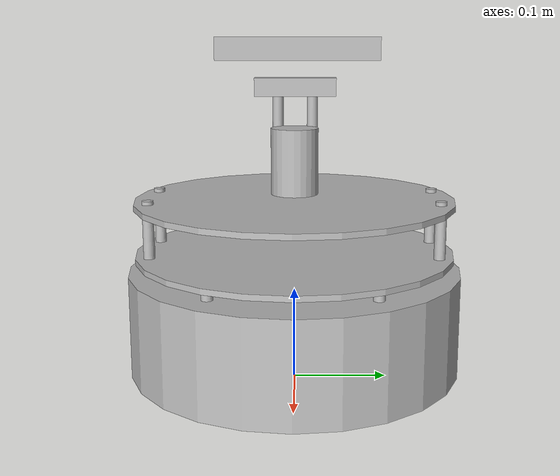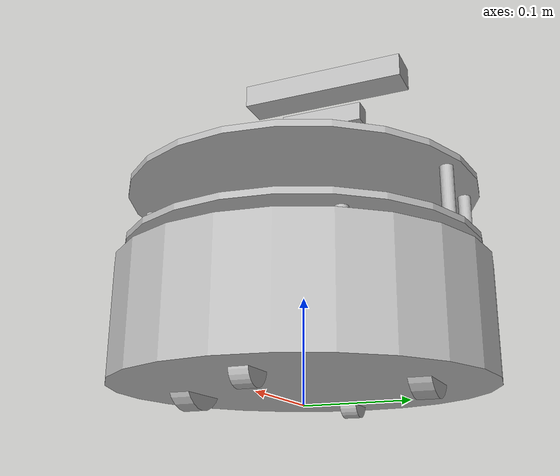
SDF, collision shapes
<sdf version='1.6'>
  <model name='turtlebot'>
    <link name='base_footprint'>
      <pose frame=''>0 0 0 0 -0 0</pose>
      <inertial>
        <pose frame=''>-0.002635 -4.1e-05 0.129243 0 -0 0</pose>
        <mass>4.6973</mass>
        <inertia>
          <ixx>0.1365</ixx>
          <ixy>-2.51802e-05</ixy>
          <ixz>0.0108194</ixz>
          <iyy>0.132157</iyy>
          <iyz>4.89572e-05</iyz>
          <izz>0.0741648</izz>
        </inertia>
      </inertial>
      <collision name='base_footprint_fixed_joint_lump__base_collision'>
        <pose frame=''>0 0 0.06969 0 -0 0</pose>
        <geometry>
          <cylinder>
            <length>0.10938</length>
            <radius>0.178</radius>
          </cylinder>
        </geometry>
      </collision>
      <collision name='base_footprint_fixed_joint_lump__caster_back_link_collision_2'>
        <pose frame=''>-0.135 0 0.0192 -1.5708 0 0</pose>
        <geometry>
          <cylinder>
            <length>0.0176</length>
            <radius>0.017</radius>
          </cylinder>
        </geometry>
        <surface>
          <contact>
            <ode>
              <kp>1e+06</kp>
              <kd>100</kd>
              <max_vel>1</max_vel>
              <min_depth>0.001</min_depth>
            </ode>
          </contact>
          <friction>
            <ode>
              <mu>0</mu>
              <mu2>0</mu2>
            </ode>
          </friction>
        </surface>
      </collision>
      <collision name='base_footprint_fixed_joint_lump__caster_front_link_collision_3'>
        <pose frame=''>0.115 0 0.0172 -1.5708 0 0</pose>
        <geometry>
          <cylinder>
            <length>0.0176</length>
            <radius>0.017</radius>
          </cylinder>
        </geometry>
        <surface>
          <contact>
            <ode>
              <kp>1e+06</kp>
              <kd>100</kd>
              <max_vel>1</max_vel>
              <min_depth>0.001</min_depth>
            </ode>
          </contact>
          <friction>
            <ode>
              <mu>0</mu>
              <mu2>0</mu2>
            </ode>
          </friction>
        </surface>
      </collision>
      <collision name='base_footprint_fixed_joint_lump__plate_bottom_link_collision_5'>
        <pose frame=''>0 0 0.1408 0 -0 0</pose>
        <geometry>
          <cylinder>
            <length>0.006</length>
            <radius>0.17</radius>
          </cylinder>
        </geometry>
      </collision>
      <collision name='base_footprint_fixed_joint_lump__plate_middle_link_collision_6'>
        <pose frame=''>0 0 0.1976 0 -0 0</pose>
        <geometry>
          <cylinder>
            <length>0.006</length>
            <radius>0.17</radius>
          </cylinder>
        </geometry>
      </collision>
      <collision name='base_footprint_fixed_joint_lump__pole_bottom_0_link_collision_8'>
        <pose frame=''>0.12 0.082 0.113 0 -0 0</pose>
        <geometry>
          <cylinder>
            <length>0.0492</length>
            <radius>0.006</radius>
          </cylinder>
        </geometry>
      </collision>
      <collision name='base_footprint_fixed_joint_lump__pole_bottom_1_link_collision_9'>
        <pose frame=''>0.055 0.12 0.113 0 -0 0</pose>
        <geometry>
          <cylinder>
            <length>0.0492</length>
            <radius>0.006</radius>
          </cylinder>
        </geometry>
      </collision>
      <collision name='base_footprint_fixed_joint_lump__pole_bottom_2_link_collision_10'>
        <pose frame=''>-0.055 0.12 0.113 0 -0 0</pose>
        <geometry>
          <cylinder>
            <length>0.0492</length>
            <radius>0.006</radius>
          </cylinder>
        </geometry>
      </collision>
      <collision name='base_footprint_fixed_joint_lump__pole_bottom_3_link_collision_11'>
        <pose frame=''>0.12 -0.082 0.113 0 -0 0</pose>
        <geometry>
          <cylinder>
            <length>0.0492</length>
            <radius>0.006</radius>
          </cylinder>
        </geometry>
      </collision>
      <collision name='base_footprint_fixed_joint_lump__pole_bottom_4_link_collision_12'>
        <pose frame=''>0.055 -0.12 0.113 0 -0 0</pose>
        <geometry>
          <cylinder>
            <length>0.0492</length>
            <radius>0.006</radius>
          </cylinder>
        </geometry>
      </collision>
      <collision name='base_footprint_fixed_joint_lump__pole_bottom_5_link_collision_13'>
        <pose frame=''>-0.055 -0.12 0.113 0 -0 0</pose>
        <geometry>
          <cylinder>
            <length>0.0492</length>
            <radius>0.006</radius>
          </cylinder>
        </geometry>
      </collision>
      <collision name='base_footprint_fixed_joint_lump__pole_middle_0_link_collision_16'>
        <pose frame=''>0.0381 0.1505 0.1742 0 -0 0</pose>
        <geometry>
          <cylinder>
            <length>0.0608</length>
            <radius>0.006</radius>
          </cylinder>
        </geometry>
      </collision>
      <collision name='base_footprint_fixed_joint_lump__pole_middle_1_link_collision_17'>
        <pose frame=''>0.0381 -0.1505 0.1742 0 -0 0</pose>
        <geometry>
          <cylinder>
            <length>0.0608</length>
            <radius>0.006</radius>
          </cylinder>
        </geometry>
      </collision>
      <collision name='base_footprint_fixed_joint_lump__pole_middle_2_link_collision_18'>
        <pose frame=''>-0.0381 0.1505 0.1742 0 -0 0</pose>
        <geometry>
          <cylinder>
            <length>0.0608</length>
            <radius>0.006</radius>
          </cylinder>
        </geometry>
      </collision>
      <collision name='base_footprint_fixed_joint_lump__pole_middle_3_link_collision_19'>
        <pose frame=''>-0.0381 -0.1505 0.1742 0 -0 0</pose>
        <geometry>
          <cylinder>
            <length>0.0608</length>
            <radius>0.006</radius>
          </cylinder>
        </geometry>
      </collision>

<!-- XTION COLLISION -->
      <collision name='base_footprint_fixed_joint_lump__pole_xtion_0_link_collision_16'>
        <pose frame=''>-0.057 0.019 0.2306 0 3.14159 0</pose>
        <geometry>
          <cylinder>
            <length>0.0608</length>
            <radius>0.006</radius>
          </cylinder>
        </geometry>
      </collision>
      <collision name='base_footprint_fixed_joint_lump__pole_xtion_1_link_collision_17'>
        <pose frame=''>-0.057 0.019 0.2806 0 3.14159 0</pose>
        <geometry>
          <cylinder>
            <length>0.0608</length>
            <radius>0.006</radius>
          </cylinder>
        </geometry>
      </collision>
      <collision name='base_footprint_fixed_joint_lump__pole_xtion_2_link_collision_18'>
        <pose frame=''>-0.057 -0.019 0.2306 0 3.14159 0</pose>
        <geometry>
          <cylinder>
            <length>0.0608</length>
            <radius>0.006</radius>
          </cylinder>
        </geometry>
      </collision>
      <collision name='base_footprint_fixed_joint_lump__pole_xtion_3_link_collision_19'>
        <pose frame=''>-0.057 -0.019 0.2806 0 3.14159 0</pose>
        <geometry>
          <cylinder>
            <length>0.0608</length>
            <radius>0.006</radius>
          </cylinder>
        </geometry>
      </collision>
      <collision name='base_footprint_fixed_joint_lump__stack_xtion_link_visual_17'>
        <pose frame=''>-0.057 0 0.315 0 0 0</pose>
        <geometry>
          <box>
            <size>0.02 0.09 0.02</size>
          </box>
        </geometry>
      </collision>
      <collision name='base_footprint_fixed_joint_lump__camera_link_collision_1'>
        <pose frame=''>-0.057 0.0025 0.3565 0 -0 0</pose>
        <geometry>
          <box>
            <size>0.035 0.18 0.025</size>
          </box>
        </geometry>
      </collision>

<!-- HOKUYO COLLISION -->
      <collision name='base_footprint_fixed_joint_lump__camera_link_collision_1'>
        <pose frame=''>0 0 0.2406 0 0 0</pose>
        <geometry>
          <cylinder>
            <radius>0.025</radius>
            <length>0.07</length>
          </cylinder>
        </geometry>
      </collision>

<!-- VISUAL -->

      <visual name='base_footprint_fixed_joint_lump__base_link_visual'>
        <pose frame=''>0.001 0 0.06219 0 -0 0</pose>
        <geometry>
          <mesh>
            <scale>1 1 1</scale>
            <uri>model://turtlebot2/meshes/kobuki/main_body.dae</uri>
          </mesh>
        </geometry>
        <material>
          <script>
            <uri>__default__</uri>
            <name>__default__</name>
          </script>
        </material>
      </visual>
      <visual name='base_footprint_fixed_joint_lump__plate_bottom_link_visual_3'>
        <pose frame=''>0.02364 0 0.1408 0 -0 0</pose>
        <geometry>
          <mesh>
            <scale>1 1 1</scale>
            <uri>model://turtlebot2/meshes/stacks/plate_bottom.dae</uri>
          </mesh>
        </geometry>
      </visual>
      <visual name='base_footprint_fixed_joint_lump__plate_middle_link_visual_4'>
        <pose frame=''>-0.01364 0 0.1976 0 -0 0</pose>
        <geometry>
          <mesh>
            <scale>1 1 1</scale>
            <uri>model://turtlebot2/meshes/stacks/plate_top.dae</uri>
          </mesh>
        </geometry>
      </visual>
      <visual name='base_footprint_fixed_joint_lump__pole_bottom_0_link_visual_6'>
        <pose frame=''>0.12 0.082 0.113 0 -0 0</pose>
        <geometry>
          <mesh>
            <scale>1 1 1</scale>
            <uri>model://turtlebot2/meshes/stacks/pole_bottom.dae</uri>
          </mesh>
        </geometry>
      </visual>
      <visual name='base_footprint_fixed_joint_lump__pole_bottom_1_link_visual_7'>
        <pose frame=''>0.055 0.12 0.113 0 -0 0</pose>
        <geometry>
          <mesh>
            <scale>1 1 1</scale>
            <uri>model://turtlebot2/meshes/stacks/pole_bottom.dae</uri>
          </mesh>
        </geometry>
      </visual>
      <visual name='base_footprint_fixed_joint_lump__pole_bottom_2_link_visual_8'>
        <pose frame=''>-0.055 0.12 0.113 0 -0 0</pose>
        <geometry>
          <mesh>
            <scale>1 1 1</scale>
            <uri>model://turtlebot2/meshes/stacks/pole_bottom.dae</uri>
          </mesh>
        </geometry>
      </visual>
      <visual name='base_footprint_fixed_joint_lump__pole_bottom_3_link_visual_9'>
        <pose frame=''>0.12 -0.082 0.113 0 -0 0</pose>
        <geometry>
          <mesh>
            <scale>1 1 1</scale>
            <uri>model://turtlebot2/meshes/stacks/pole_bottom.dae</uri>
          </mesh>
        </geometry>
      </visual>
      <visual name='base_footprint_fixed_joint_lump__pole_bottom_4_link_visual_10'>
        <pose frame=''>0.055 -0.12 0.113 0 -0 0</pose>
        <geometry>
          <mesh>
            <scale>1 1 1</scale>
            <uri>model://turtlebot2/meshes/stacks/pole_bottom.dae</uri>
          </mesh>
        </geometry>
      </visual>
      <visual name='base_footprint_fixed_joint_lump__pole_bottom_5_link_visual_11'>
        <pose frame=''>-0.055 -0.12 0.113 0 -0 0</pose>
        <geometry>
          <mesh>
            <scale>1 1 1</scale>
            <uri>model://turtlebot2/meshes/stacks/pole_bottom.dae</uri>
          </mesh>
        </geometry>
      </visual>
      <visual name='base_footprint_fixed_joint_lump__pole_middle_0_link_visual_14'>
        <pose frame=''>0.0381 0.1505 0.1742 3.14159 -0 3.14159</pose>
        <geometry>
          <mesh>
            <scale>1 1 1</scale>
            <uri>model://turtlebot2/meshes/stacks/pole_middle.dae</uri>
          </mesh>
        </geometry>
      </visual>
      <visual name='base_footprint_fixed_joint_lump__pole_middle_1_link_visual_15'>
        <pose frame=''>0.0381 -0.1505 0.1742 3.14159 -0 3.14159</pose>
        <geometry>
          <mesh>
            <scale>1 1 1</scale>
            <uri>model://turtlebot2/meshes/stacks/pole_middle.dae</uri>
          </mesh>
        </geometry>
      </visual>
      <visual name='base_footprint_fixed_joint_lump__pole_middle_2_link_visual_16'>
        <pose frame=''>-0.0381 0.1505 0.1742 3.14159 -0 3.14159</pose>
        <geometry>
          <mesh>
            <scale>1 1 1</scale>
            <uri>model://turtlebot2/meshes/stacks/pole_middle.dae</uri>
          </mesh>
        </geometry>
      </visual>
      <visual name='base_footprint_fixed_joint_lump__pole_middle_3_link_visual_17'>
        <pose frame=''>-0.0381 -0.1505 0.1742 3.14159 -0 3.14159</pose>
        <geometry>
          <mesh>
            <scale>1 1 1</scale>
            <uri>model://turtlebot2/meshes/stacks/pole_middle.dae</uri>
          </mesh>
        </geometry>
      </visual>

<!-- XTION VISUAL -->
      <visual name='base_footprint_fixed_joint_lump__pole_xtion_0_link_visual_14'>
        <pose frame=''>-0.057 0.019 0.2306 0 3.14159 0</pose>
        <geometry>
          <mesh>
            <scale>1 1 1</scale>
            <uri>model://turtlebot2/meshes/stacks/pole_middle.dae</uri>
          </mesh>
        </geometry>
      </visual>
      <visual name='base_footprint_fixed_joint_lump__pole_xtion_1_link_visual_15'>
        <pose frame=''>-0.057 0.019 0.2806 0 3.14159 0</pose>
        <geometry>
          <mesh>
            <scale>1 1 1</scale>
            <uri>model://turtlebot2/meshes/stacks/pole_middle.dae</uri>
          </mesh>
        </geometry>
      </visual>
      <visual name='base_footprint_fixed_joint_lump__pole_xtion_2_link_visual_16'>
        <pose frame=''>-0.057 -0.019 0.2306 0 3.14159 0</pose>
        <geometry>
          <mesh>
            <scale>1 1 1</scale>
            <uri>model://turtlebot2/meshes/stacks/pole_middle.dae</uri>
          </mesh>
        </geometry>
      </visual>
      <visual name='base_footprint_fixed_joint_lump__pole_xtion_3_link_visual_17'>
        <pose frame=''>-0.057 -0.019 0.2806 0 3.14159 0</pose>
        <geometry>
          <mesh>
            <scale>1 1 1</scale>
            <uri>model://turtlebot2/meshes/stacks/pole_middle.dae</uri>
          </mesh>
        </geometry>
      </visual>
      <visual name='base_footprint_fixed_joint_lump__stack_xtion_link_visual_17'>
        <pose frame=''>-0.057 0 0.315 0 0 0</pose>
        <geometry>
          <box>
            <size>0.02 0.09 0.02</size>
          </box>
        </geometry>
        <material>
          <script>
            <uri>file://media/materials/scripts/gazebo.material</uri>
            <name>Gazebo/Black</name>
          </script>
          <ambient>1 1 1 1</ambient>
        </material>
      </visual>
      <visual name='base_footprint_fixed_joint_lump__camera_link_visual_1'>
        <pose frame=''>-0.057 0.005 0.36 0 -0 0</pose>
        <geometry>
          <mesh>
            <scale>1 1 1</scale>
            <uri>model://turtlebot2/meshes/sensors/xtion_pro_camera.dae</uri>
          </mesh>
        </geometry>
        <material>
          <script>
            <uri>__default__</uri>
            <name>__default__</name>
          </script>
        </material>
      </visual>
<!-- HOKUYO VISUAL -->
      <visual name='base_footprint_fixed_joint_lump__stack_hokuyo_link_visual_17'>
        <pose frame=''>0 0 0.2031 0 0 0</pose>
        <geometry>
          <box>
            <size>0.098 0.055 0.005</size>
          </box>
        </geometry>
        <material>
          <script>
            <uri>file://media/materials/scripts/gazebo.material</uri>
            <name>Gazebo/Wood</name>
          </script>
          <ambient>1 1 1 1</ambient>
        </material>
      </visual>

      <visual name='base_footprint_fixed_joint_lump__laser_hokuyo_link_visual_17'>
        <pose frame=''>0 0 0.2406 0 0 0</pose>
        <geometry>
          <mesh>
            <uri>model://hokuyo/meshes/hokuyo.dae</uri>
          </mesh>
        </geometry>
      </visual>
      <sensor name="laser" type="ray">
        <pose>0.01 0 0.2706 0 -0 0</pose>
        <ray>
          <scan>
            <horizontal>
              <samples>1081</samples>
              <resolution>0.25</resolution>
              <min_angle>-2.35619</min_angle>
              <max_angle>2.35619</max_angle>
            </horizontal>
          </scan>
          <range>
            <min>0.06</min>
            <max>20</max>
            <resolution>0.01</resolution>
          </range>
          <noise>
            <type>gaussian</type>
            <mean>0.0</mean>
            <stddev>0.004</stddev>
          </noise>
        </ray>

        <plugin name="laser" filename="libRayPlugin.so" />
        <always_on>1</always_on>
        <update_rate>30</update_rate>
        <visualize>true</visualize>
      </sensor>

      <velocity_decay/>
      <sensor name='bumpers' type='contact'>
        <always_on>1</always_on>
        <update_rate>50</update_rate>
        <visualize>1</visualize>
        <contact>
          <collision>base_footprint_fixed_joint_lump__base_collision</collision>
          <topic>__default_topic__</topic>
        </contact>
        <pose frame=''>0 0 0.0102 0 -0 0</pose>
      </sensor>
      <velocity_decay/>
      <sensor name='camera' type='depth'>
        <always_on>1</always_on>
        <update_rate>20</update_rate>
        <camera name='__default__'>
          <horizontal_fov>1.0472</horizontal_fov>
          <image>
            <format>B8G8R8</format>
            <width>640</width>
            <height>480</height>
          </image>
          <clip>
            <near>0.05</near>
            <far>8</far>
          </clip>
        </camera>
        <pose frame=''>-0.087 -0.0015 0.2972 0 -0 0</pose>
      </sensor>
      <velocity_decay/>
      <velocity_decay/>
      <velocity_decay/>
      <sensor name='cliff_sensor_front' type='ray'>
        <always_on>1</always_on>
        <update_rate>50</update_rate>
        <visualize>1</visualize>
        <ray>
          <scan>
            <horizontal>
              <samples>50</samples>
              <resolution>1</resolution>
              <min_angle>-0.0436</min_angle>
              <max_angle>0.0436</max_angle>
            </horizontal>
          </scan>
          <range>
            <min>0.01</min>
            <max>0.15</max>
            <resolution>1</resolution>
          </range>
        </ray>
        <pose frame=''>0.156 0 0.0316 3.14159 1.57079 3.14159</pose>
      </sensor>
      <velocity_decay/>
      <sensor name='cliff_sensor_left' type='ray'>
        <always_on>1</always_on>
        <update_rate>50</update_rate>
        <visualize>1</visualize>
        <ray>
          <scan>
            <horizontal>
              <samples>50</samples>
              <resolution>1</resolution>
              <min_angle>-0.0436</min_angle>
              <max_angle>0.0436</max_angle>
            </horizontal>
          </scan>
          <range>
            <min>0.01</min>
            <max>0.15</max>
            <resolution>1</resolution>
          </range>
        </ray>
        <pose frame=''>0.08734 0.13601 0.0316 3.14159 1.57079 3.14159</pose>
      </sensor>
      <velocity_decay/>
      <sensor name='cliff_sensor_right' type='ray'>
        <always_on>1</always_on>
        <update_rate>50</update_rate>
        <visualize>1</visualize>
        <ray>
          <scan>
            <horizontal>
              <samples>50</samples>
              <resolution>1</resolution>
              <min_angle>-0.0436</min_angle>
              <max_angle>0.0436</max_angle>
            </horizontal>
          </scan>
          <range>
            <min>0.01</min>
            <max>0.15</max>
            <resolution>1</resolution>
          </range>
        </ray>
        <pose frame=''>0.085 -0.13601 0.0316 3.14159 1.57079 3.14159</pose>
      </sensor>
      <gravity>1</gravity>
      <velocity_decay/>
      <self_collide>0</self_collide>
      <sensor name='imu' type='imu'>
        <always_on>1</always_on>
        <update_rate>50</update_rate>
        <visualize>0</visualize>
        <imu>
          <angular_velocity>
            <x>
              <noise type='gaussian'>
                <mean>0</mean>
                <stddev>1.96e-06</stddev>
                <bias_mean>0</bias_mean>
                <bias_stddev>0</bias_stddev>
              </noise>
            </x>
            <y>
              <noise type='gaussian'>
                <mean>0</mean>
                <stddev>1.96e-06</stddev>
                <bias_mean>0</bias_mean>
                <bias_stddev>0</bias_stddev>
              </noise>
            </y>
            <z>
              <noise type='gaussian'>
                <mean>0</mean>
                <stddev>1.96e-06</stddev>
                <bias_mean>0</bias_mean>
                <bias_stddev>0</bias_stddev>
              </noise>
            </z>
          </angular_velocity>
          <linear_acceleration>
            <x>
              <noise type='gaussian'>
                <mean>0</mean>
                <stddev>0.017</stddev>
                <bias_mean>0.1</bias_mean>
                <bias_stddev>0.001</bias_stddev>
              </noise>
            </x>
            <y>
              <noise type='gaussian'>
                <mean>0</mean>
                <stddev>0.017</stddev>
                <bias_mean>0.1</bias_mean>
                <bias_stddev>0.001</bias_stddev>
              </noise>
            </y>
            <z>
              <noise type='gaussian'>
                <mean>0</mean>
                <stddev>0.017</stddev>
                <bias_mean>0.1</bias_mean>
                <bias_stddev>0.001</bias_stddev>
              </noise>
            </z>
          </linear_acceleration>
        </imu>
        <pose frame=''>0.056 0.062 0.0304 0 -0 0</pose>
      </sensor>
    </link>
    <link name='wheel_left_link'>
      <pose frame=''>0 0.115 0.0352 -1.5708 0 0</pose>
      <inertial>
        <pose frame=''>0 0 0 0 -0 0</pose>
        <mass>0.01</mass>
        <inertia>
          <ixx>0.001</ixx>
          <ixy>0</ixy>
          <ixz>0</ixz>
          <iyy>0.001</iyy>
          <iyz>0</iyz>
          <izz>0.001</izz>
        </inertia>
      </inertial>
      <collision name='wheel_left_link_collision'>
        <pose frame=''>0 0 0 0 -0 0</pose>
        <geometry>
          <cylinder>
            <length>0.0206</length>
            <radius>0.0352</radius>
          </cylinder>
        </geometry>
        <surface>
          <contact>
            <ode>
              <kp>1e+06</kp>
              <kd>100</kd>
              <max_vel>1</max_vel>
              <min_depth>0.001</min_depth>
            </ode>
          </contact>
          <friction>
            <ode>
              <mu>1</mu>
              <mu2>1</mu2>
            </ode>
          </friction>
        </surface>
      </collision>
      <visual name='wheel_left_link_visual'>
        <pose frame=''>0 0 0 0 -0 0</pose>
        <geometry>
          <mesh>
            <scale>1 1 1</scale>
            <uri>model://turtlebot2/meshes/kobuki/wheel.dae</uri>
          </mesh>
        </geometry>
        <material>
          <script>
            <uri>__default__</uri>
            <name>__default__</name>
          </script>
        </material>
      </visual>
      <gravity>1</gravity>
      <velocity_decay/>
      <self_collide>0</self_collide>
    </link>
    <joint name='wheel_left_joint' type='revolute'>
      <child>wheel_left_link</child>
      <parent>base_footprint</parent>
      <axis>
        <xyz>0 1 0</xyz>
        <limit>
          <lower>-1e+16</lower>
          <upper>1e+16</upper>
        </limit>
        <dynamics>
          <spring_reference>0</spring_reference>
          <spring_stiffness>0</spring_stiffness>
        </dynamics>
        <use_parent_model_frame>1</use_parent_model_frame>
      </axis>
    </joint>
    <link name='wheel_right_link'>
      <pose frame=''>0 -0.115 0.0352 -1.5708 0 0</pose>
      <inertial>
        <pose frame=''>0 0 0 0 -0 0</pose>
        <mass>0.01</mass>
        <inertia>
          <ixx>0.001</ixx>
          <ixy>0</ixy>
          <ixz>0</ixz>
          <iyy>0.001</iyy>
          <iyz>0</iyz>
          <izz>0.001</izz>
        </inertia>
      </inertial>
      <collision name='wheel_right_link_collision'>
        <pose frame=''>0 0 0 0 -0 0</pose>
        <geometry>
          <cylinder>
            <length>0.0206</length>
            <radius>0.035</radius>
          </cylinder>
        </geometry>
        <surface>
          <contact>
            <ode>
              <kp>1e+06</kp>
              <kd>100</kd>
              <max_vel>1</max_vel>
              <min_depth>0.001</min_depth>
            </ode>
          </contact>
          <friction>
            <ode>
              <mu>1</mu>
              <mu2>1</mu2>
            </ode>
          </friction>
        </surface>
      </collision>
      <visual name='wheel_right_link_visual'>
        <pose frame=''>0 0 0 0 -0 0</pose>
        <geometry>
          <mesh>
            <scale>1 1 1</scale>
            <uri>model://turtlebot2/meshes/kobuki/wheel.dae</uri>
          </mesh>
        </geometry>
        <material>
          <script>
            <uri>__default__</uri>
            <name>__default__</name>
          </script>
        </material>
      </visual>
      <gravity>1</gravity>
      <velocity_decay/>
      <self_collide>0</self_collide>
    </link>
    <joint name='wheel_right_joint' type='revolute'>
      <child>wheel_right_link</child>
      <parent>base_footprint</parent>
      <axis>
        <xyz>0 1 0</xyz>
        <limit>
          <lower>-1e+16</lower>
          <upper>1e+16</upper>
        </limit>
        <dynamics>
          <spring_reference>0</spring_reference>
          <spring_stiffness>0</spring_stiffness>
        </dynamics>
        <use_parent_model_frame>1</use_parent_model_frame>
      </axis>
    </joint>
    <static>0</static>
  </model>
</sdf>
